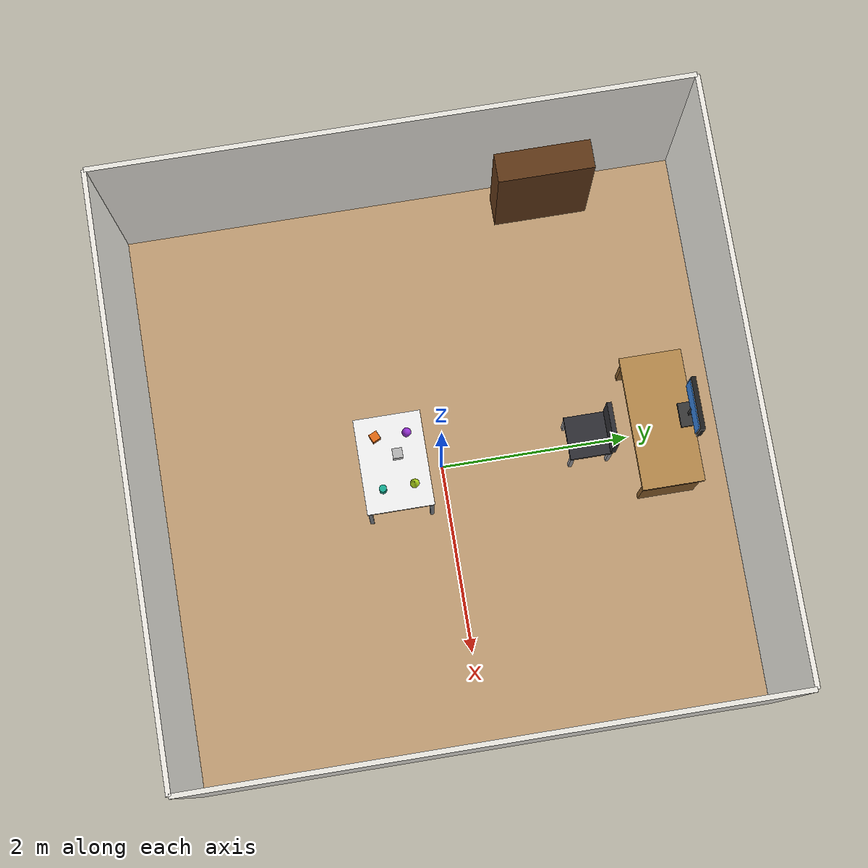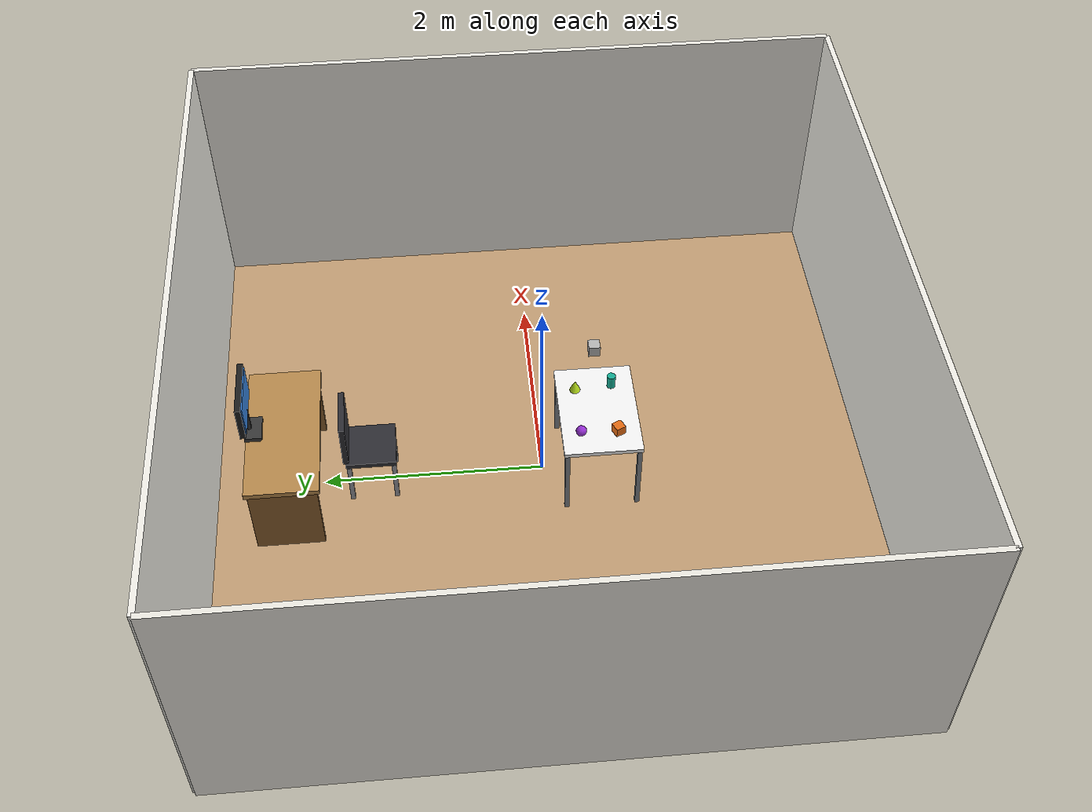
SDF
<?xml version="1.0" ?>
<sdf version="1.10">
  <world name="bps_room">

    <!-- ==================== PHYSICS ==================== -->
    <physics name="1ms" type="ignored">
      <max_step_size>0.001</max_step_size>
      <real_time_factor>1</real_time_factor>
      <real_time_update_rate>1000</real_time_update_rate>
    </physics>

    <gravity>0 0 -9.8</gravity>
    <magnetic_field>5.5645e-06 2.28758e-05 -4.23884e-05</magnetic_field>
    <atmosphere type="adiabatic"/>

    <!-- ==================== SCENE ==================== -->
    <scene>
      <ambient>0.4 0.4 0.4 1</ambient>
      <background>0.7 0.7 0.7 1</background>
      <shadows>true</shadows>
    </scene>

    <!-- ==================== PLUGINS ==================== -->
    <plugin name="gz::sim::systems::Physics"
            filename="gz-sim-physics-system"/>
    <plugin name="gz::sim::systems::UserCommands"
            filename="gz-sim-user-commands-system"/>
    <plugin name="gz::sim::systems::SceneBroadcaster"
            filename="gz-sim-scene-broadcaster-system"/>
    <plugin name="gz::sim::systems::Sensors"
            filename="gz-sim-sensors-system">
      <render_engine>ogre2</render_engine>
    </plugin>
    <plugin name="gz::sim::systems::Contact"
            filename="gz-sim-contact-system"/>
    <plugin
      filename="gz-sim-label-system"
      name="gz::sim::systems::Label"/>

    <!-- ==================== LIGHTING ==================== -->
    <light name="sun" type="directional">
      <pose>0 0 10 0 0 0</pose>
      <cast_shadows>true</cast_shadows>
      <intensity>1</intensity>
      <direction>-0.5 0.1 -0.9</direction>
      <diffuse>0.8 0.8 0.8 1</diffuse>
      <specular>0.2 0.2 0.2 1</specular>
      <attenuation>
        <range>1000</range>
        <linear>0.01</linear>
        <constant>0.9</constant>
        <quadratic>0.001</quadratic>
      </attenuation>
      <spot>
        <inner_angle>0</inner_angle>
        <outer_angle>0</outer_angle>
        <falloff>0</falloff>
      </spot>
    </light>

    <light name="ambient_fill" type="directional">
      <pose>0 0 4 0 0 0</pose>
      <diffuse>0.4 0.4 0.4 1</diffuse>
      <specular>0.0 0.0 0.0 1</specular>
      <direction>0.3 -0.3 -1</direction>
    </light>

    <!-- ==================== ROOM SHELL ==================== -->

    <model name="floor">
      <static>true</static>
      <pose>0 0 0 0 0 0</pose>
      <link name="link">
        <collision name="collision">
          <geometry><box><size>6 6 0.02</size></box></geometry>
        </collision>
        <visual name="visual">
          <geometry><box><size>6 6 0.02</size></box></geometry>
          <material>
            <ambient>0.76 0.62 0.46 1</ambient>
            <diffuse>0.76 0.62 0.46 1</diffuse>
          </material>
        </visual>
      </link>
    </model>

    <model name="wall_north">
      <static>true</static>
      <pose>0 3 1.25 0 0 0</pose>
      <link name="link">
        <collision name="collision">
          <geometry><box><size>6 0.05 2.5</size></box></geometry>
        </collision>
        <visual name="visual">
          <geometry><box><size>6 0.05 2.5</size></box></geometry>
          <material>
            <ambient>0.95 0.94 0.91 1</ambient>
            <diffuse>0.95 0.94 0.91 1</diffuse>
          </material>
        </visual>
      </link>
    </model>

    <model name="wall_south">
      <static>true</static>
      <pose>0 -3 1.25 0 0 0</pose>
      <link name="link">
        <collision name="collision">
          <geometry><box><size>6 0.05 2.5</size></box></geometry>
        </collision>
        <visual name="visual">
          <geometry><box><size>6 0.05 2.5</size></box></geometry>
          <material>
            <ambient>0.95 0.94 0.91 1</ambient>
            <diffuse>0.95 0.94 0.91 1</diffuse>
          </material>
        </visual>
      </link>
    </model>

    <model name="wall_east">
      <static>true</static>
      <pose>3 0 1.25 0 0 0</pose>
      <link name="link">
        <collision name="collision">
          <geometry><box><size>0.05 6 2.5</size></box></geometry>
        </collision>
        <visual name="visual">
          <geometry><box><size>0.05 6 2.5</size></box></geometry>
          <material>
            <ambient>0.93 0.92 0.89 1</ambient>
            <diffuse>0.93 0.92 0.89 1</diffuse>
          </material>
        </visual>
      </link>
    </model>

    <model name="wall_west">
      <static>true</static>
      <pose>-3 0 1.25 0 0 0</pose>
      <link name="link">
        <collision name="collision">
          <geometry><box><size>0.05 6 2.5</size></box></geometry>
        </collision>
        <visual name="visual">
          <geometry><box><size>0.05 6 2.5</size></box></geometry>
          <material>
            <ambient>0.93 0.92 0.89 1</ambient>
            <diffuse>0.93 0.92 0.89 1</diffuse>
          </material>
        </visual>
      </link>
    </model>

    <!-- ==================== BOOKSHELF (west wall) ==================== -->

    <model name="bookshelf_body">
      <static>true</static>
      <pose>-2.7 1.5 0.75 0 0 0</pose>
      <link name="link">
        <collision name="collision">
          <geometry><box><size>0.3 1.0 1.5</size></box></geometry>
        </collision>
        <visual name="visual">
          <geometry><box><size>0.3 1.0 1.5</size></box></geometry>
          <material>
            <ambient>0.38 0.22 0.09 1</ambient>
            <diffuse>0.38 0.22 0.09 1</diffuse>
          </material>
        </visual>
      </link>
    </model>

    <model name="shelf_1">
      <static>true</static>
      <pose>-2.7 1.5 0.4 0 0 0</pose>
      <link name="link">
        <collision name="collision">
          <geometry><box><size>0.28 0.95 0.02</size></box></geometry>
        </collision>
        <visual name="visual">
          <geometry><box><size>0.28 0.95 0.02</size></box></geometry>
          <material>
            <ambient>0.50 0.32 0.14 1</ambient>
            <diffuse>0.50 0.32 0.14 1</diffuse>
          </material>
        </visual>
      </link>
    </model>

    <model name="shelf_2">
      <static>true</static>
      <pose>-2.7 1.5 0.85 0 0 0</pose>
      <link name="link">
        <collision name="collision">
          <geometry><box><size>0.28 0.95 0.02</size></box></geometry>
        </collision>
        <visual name="visual">
          <geometry><box><size>0.28 0.95 0.02</size></box></geometry>
          <material>
            <ambient>0.50 0.32 0.14 1</ambient>
            <diffuse>0.50 0.32 0.14 1</diffuse>
          </material>
        </visual>
      </link>
    </model>

    <model name="shelf_3">
      <static>true</static>
      <pose>-2.7 1.5 1.25 0 0 0</pose>
      <link name="link">
        <collision name="collision">
          <geometry><box><size>0.28 0.95 0.02</size></box></geometry>
        </collision>
        <visual name="visual">
          <geometry><box><size>0.28 0.95 0.02</size></box></geometry>
          <material>
            <ambient>0.50 0.32 0.14 1</ambient>
            <diffuse>0.50 0.32 0.14 1</diffuse>
          </material>
        </visual>
      </link>
    </model>

    <model name="books_row1">
      <static>true</static>
      <pose>-2.62 1.5 0.62 0 0 0</pose>
      <link name="link">
        <visual name="visual">
          <geometry><box><size>0.04 0.8 0.2</size></box></geometry>
          <material>
            <ambient>0.78 0.18 0.18 1</ambient>
            <diffuse>0.78 0.18 0.18 1</diffuse>
          </material>
        </visual>
      </link>
    </model>

    <model name="books_row2">
      <static>true</static>
      <pose>-2.62 1.5 1.06 0 0 0</pose>
      <link name="link">
        <visual name="visual">
          <geometry><box><size>0.04 0.7 0.18</size></box></geometry>
          <material>
            <ambient>0.18 0.32 0.72 1</ambient>
            <diffuse>0.18 0.32 0.72 1</diffuse>
          </material>
        </visual>
      </link>
    </model>

    <!-- ==================== DESK + CHAIR (north wall) ==================== -->

    <model name="desk">
      <static>true</static>
      <pose>0 2.3 0.75 0 0 0</pose>
      <link name="link">
        <collision name="collision">
          <geometry><box><size>1.4 0.65 0.05</size></box></geometry>
        </collision>
        <visual name="visual">
          <geometry><box><size>1.4 0.65 0.05</size></box></geometry>
          <material>
            <ambient>0.72 0.54 0.30 1</ambient>
            <diffuse>0.72 0.54 0.30 1</diffuse>
          </material>
        </visual>
      </link>
    </model>

    <model name="desk_leg_left">
      <static>true</static>
      <pose>-0.65 2.3 0.375 0 0 0</pose>
      <link name="link">
        <collision name="collision">
          <geometry><box><size>0.05 0.6 0.75</size></box></geometry>
        </collision>
        <visual name="visual">
          <geometry><box><size>0.05 0.6 0.75</size></box></geometry>
          <material>
            <ambient>0.55 0.38 0.18 1</ambient>
            <diffuse>0.55 0.38 0.18 1</diffuse>
          </material>
        </visual>
      </link>
    </model>

    <model name="desk_leg_right">
      <static>true</static>
      <pose>0.65 2.3 0.375 0 0 0</pose>
      <link name="link">
        <collision name="collision">
          <geometry><box><size>0.05 0.6 0.75</size></box></geometry>
        </collision>
        <visual name="visual">
          <geometry><box><size>0.05 0.6 0.75</size></box></geometry>
          <material>
            <ambient>0.55 0.38 0.18 1</ambient>
            <diffuse>0.55 0.38 0.18 1</diffuse>
          </material>
        </visual>
      </link>
    </model>

    <model name="monitor_base">
      <static>true</static>
      <pose>0 2.55 0.82 0 0 0</pose>
      <link name="link">
        <collision name="collision">
          <geometry><box><size>0.25 0.15 0.04</size></box></geometry>
        </collision>
        <visual name="visual">
          <geometry><box><size>0.25 0.15 0.04</size></box></geometry>
          <material>
            <ambient>0.22 0.22 0.22 1</ambient>
            <diffuse>0.22 0.22 0.22 1</diffuse>
          </material>
        </visual>
      </link>
    </model>

    <model name="monitor_stand">
      <static>true</static>
      <pose>0 2.58 0.97 0 0 0</pose>
      <link name="link">
        <collision name="collision">
          <geometry><box><size>0.03 0.03 0.26</size></box></geometry>
        </collision>
        <visual name="visual">
          <geometry><box><size>0.03 0.03 0.26</size></box></geometry>
          <material>
            <ambient>0.22 0.22 0.22 1</ambient>
            <diffuse>0.22 0.22 0.22 1</diffuse>
          </material>
        </visual>
      </link>
    </model>

    <model name="monitor_screen">
      <static>true</static>
      <pose>0 2.6 1.2 0 0 0</pose>
      <link name="link">
        <collision name="collision">
          <geometry><box><size>0.55 0.05 0.35</size></box></geometry>
        </collision>
        <visual name="visual">
          <geometry><box><size>0.55 0.05 0.35</size></box></geometry>
          <material>
            <ambient>0.12 0.12 0.12 1</ambient>
            <diffuse>0.12 0.12 0.12 1</diffuse>
          </material>
        </visual>
      </link>
    </model>

    <model name="monitor_face">
      <static>true</static>
      <pose>0 2.57 1.2 0 0 0</pose>
      <link name="link">
        <visual name="visual">
          <geometry><box><size>0.5 0.01 0.3</size></box></geometry>
          <material>
            <ambient>0.22 0.52 0.88 1</ambient>
            <diffuse>0.22 0.52 0.88 1</diffuse>
            <emissive>0.10 0.25 0.45 1</emissive>
          </material>
        </visual>
      </link>
    </model>

    <model name="chair_seat">
      <static>true</static>
      <pose>0 1.55 0.48 0 0 0</pose>
      <link name="link">
        <collision name="collision">
          <geometry><box><size>0.45 0.45 0.05</size></box></geometry>
        </collision>
        <visual name="visual">
          <geometry><box><size>0.45 0.45 0.05</size></box></geometry>
          <material>
            <ambient>0.18 0.18 0.20 1</ambient>
            <diffuse>0.18 0.18 0.20 1</diffuse>
          </material>
        </visual>
      </link>
    </model>

    <model name="chair_back">
      <static>true</static>
      <pose>0 1.77 0.75 0 0 0</pose>
      <link name="link">
        <collision name="collision">
          <geometry><box><size>0.45 0.05 0.45</size></box></geometry>
        </collision>
        <visual name="visual">
          <geometry><box><size>0.45 0.05 0.45</size></box></geometry>
          <material>
            <ambient>0.18 0.18 0.20 1</ambient>
            <diffuse>0.18 0.18 0.20 1</diffuse>
          </material>
        </visual>
      </link>
    </model>

    <model name="chair_leg_fl">
      <static>true</static>
      <pose>-0.2 1.35 0.24 0 0 0</pose>
      <link name="link">
        <collision name="collision">
          <geometry><box><size>0.04 0.04 0.48</size></box></geometry>
        </collision>
        <visual name="visual">
          <geometry><box><size>0.04 0.04 0.48</size></box></geometry>
          <material>
            <ambient>0.60 0.60 0.62 1</ambient>
            <diffuse>0.60 0.60 0.62 1</diffuse>
          </material>
        </visual>
      </link>
    </model>

    <model name="chair_leg_fr">
      <static>true</static>
      <pose>0.2 1.35 0.24 0 0 0</pose>
      <link name="link">
        <collision name="collision">
          <geometry><box><size>0.04 0.04 0.48</size></box></geometry>
        </collision>
        <visual name="visual">
          <geometry><box><size>0.04 0.04 0.48</size></box></geometry>
          <material>
            <ambient>0.60 0.60 0.62 1</ambient>
            <diffuse>0.60 0.60 0.62 1</diffuse>
          </material>
        </visual>
      </link>
    </model>

    <model name="chair_leg_bl">
      <static>true</static>
      <pose>-0.2 1.75 0.24 0 0 0</pose>
      <link name="link">
        <collision name="collision">
          <geometry><box><size>0.04 0.04 0.48</size></box></geometry>
        </collision>
        <visual name="visual">
          <geometry><box><size>0.04 0.04 0.48</size></box></geometry>
          <material>
            <ambient>0.60 0.60 0.62 1</ambient>
            <diffuse>0.60 0.60 0.62 1</diffuse>
          </material>
        </visual>
      </link>
    </model>

    <model name="chair_leg_br">
      <static>true</static>
      <pose>0.2 1.75 0.24 0 0 0</pose>
      <link name="link">
        <collision name="collision">
          <geometry><box><size>0.04 0.04 0.48</size></box></geometry>
        </collision>
        <visual name="visual">
          <geometry><box><size>0.04 0.04 0.48</size></box></geometry>
          <material>
            <ambient>0.60 0.60 0.62 1</ambient>
            <diffuse>0.60 0.60 0.62 1</diffuse>
          </material>
        </visual>
      </link>
    </model>

    <!-- ==================== EXPERIMENT TABLE (permanent, centre) ==================== -->

    <model name="experiment_table">
      <static>true</static>
      <pose>0 -0.5 0.75 0 0 0</pose>
      <link name="link">
        <collision name="collision">
          <geometry><box><size>1.0 0.7 0.04</size></box></geometry>
        </collision>
        <visual name="visual">
          <geometry><box><size>1.0 0.7 0.04</size></box></geometry>
          <material>
            <ambient>0.96 0.96 0.96 1</ambient>
            <diffuse>0.96 0.96 0.96 1</diffuse>
          </material>
        </visual>
      </link>
    </model>

    <model name="table_leg_fl">
      <static>true</static>
      <pose>-0.47 -0.82 0.375 0 0 0</pose>
      <link name="link">
        <collision name="collision">
          <geometry><box><size>0.04 0.04 0.75</size></box></geometry>
        </collision>
        <visual name="visual">
          <geometry><box><size>0.04 0.04 0.75</size></box></geometry>
          <material>
            <ambient>0.50 0.52 0.54 1</ambient>
            <diffuse>0.50 0.52 0.54 1</diffuse>
          </material>
        </visual>
      </link>
    </model>

    <model name="table_leg_fr">
      <static>true</static>
      <pose>0.47 -0.82 0.375 0 0 0</pose>
      <link name="link">
        <collision name="collision">
          <geometry><box><size>0.04 0.04 0.75</size></box></geometry>
        </collision>
        <visual name="visual">
          <geometry><box><size>0.04 0.04 0.75</size></box></geometry>
          <material>
            <ambient>0.50 0.52 0.54 1</ambient>
            <diffuse>0.50 0.52 0.54 1</diffuse>
          </material>
        </visual>
      </link>
    </model>

    <model name="table_leg_bl">
      <static>true</static>
      <pose>-0.47 -0.18 0.375 0 0 0</pose>
      <link name="link">
        <collision name="collision">
          <geometry><box><size>0.04 0.04 0.75</size></box></geometry>
        </collision>
        <visual name="visual">
          <geometry><box><size>0.04 0.04 0.75</size></box></geometry>
          <material>
            <ambient>0.50 0.52 0.54 1</ambient>
            <diffuse>0.50 0.52 0.54 1</diffuse>
          </material>
        </visual>
      </link>
    </model>

    <model name="table_leg_br">
      <static>true</static>
      <pose>0.47 -0.18 0.375 0 0 0</pose>
      <link name="link">
        <collision name="collision">
          <geometry><box><size>0.04 0.04 0.75</size></box></geometry>
        </collision>
        <visual name="visual">
          <geometry><box><size>0.04 0.04 0.75</size></box></geometry>
          <material>
            <ambient>0.50 0.52 0.54 1</ambient>
            <diffuse>0.50 0.52 0.54 1</diffuse>
          </material>
        </visual>
      </link>
    </model>

    <!-- ==================== PRIMITIVE OBJECTS ON EXPERIMENT TABLE ==================== -->

    <!-- CUBE  label=1  orange  yaw=0.42 rad -->
    <model name="obj_cube">
      <static>true</static>
      <pose>-0.28 -0.65 0.815 0 0 0.42</pose>
      <link name="link">
        <collision name="collision">
          <geometry>
            <box><size>0.09 0.09 0.09</size></box>
          </geometry>
        </collision>
        <visual name="visual">
          <geometry>
            <box><size>0.09 0.09 0.09</size></box>
          </geometry>
          <material>
            <ambient>0.90 0.42 0.08 1</ambient>
            <diffuse>0.90 0.42 0.08 1</diffuse>
            <specular>0.3 0.3 0.3 1</specular>
          </material>
          <plugin filename="gz-sim-label-system"
                  name="gz::sim::systems::Label">
            <label>1</label>
          </plugin>
        </visual>
      </link>
    </model>

    <!-- CYLINDER  label=2  teal  upright -->
    <model name="obj_cylinder">
      <static>true</static>
      <pose>0.27 -0.65 0.835 0 0 0</pose>
      <link name="link">
        <collision name="collision">
          <geometry>
            <cylinder>
              <radius>0.038</radius>
              <length>0.13</length>
            </cylinder>
          </geometry>
        </collision>
        <visual name="visual">
          <geometry>
            <cylinder>
              <radius>0.038</radius>
              <length>0.13</length>
            </cylinder>
          </geometry>
          <material>
            <ambient>0.08 0.68 0.58 1</ambient>
            <diffuse>0.08 0.68 0.58 1</diffuse>
            <specular>0.4 0.4 0.4 1</specular>
          </material>
          <plugin filename="gz-sim-label-system"
                  name="gz::sim::systems::Label">
            <label>2</label>
          </plugin>
        </visual>
      </link>
    </model>

    <!-- SPHERE  label=3  violet -->
    <model name="obj_sphere">
      <static>true</static>
      <pose>-0.28 -0.32 0.818 0 0 0</pose>
      <link name="link">
        <collision name="collision">
          <geometry>
            <sphere><radius>0.048</radius></sphere>
          </geometry>
        </collision>
        <visual name="visual">
          <geometry>
            <sphere><radius>0.048</radius></sphere>
          </geometry>
          <material>
            <ambient>0.58 0.18 0.82 1</ambient>
            <diffuse>0.58 0.18 0.82 1</diffuse>
            <specular>0.5 0.5 0.5 1</specular>
          </material>
          <plugin filename="gz-sim-label-system"
                  name="gz::sim::systems::Label">
            <label>3</label>
          </plugin>
        </visual>
      </link>
    </model>

    <!-- CONE  label=4  yellow-green  yaw=1.05 rad -->
    <model name="obj_cone">
      <static>true</static>
      <pose>0.25 -0.32 0.825 0 0 1.05</pose>
      <link name="link">
        <collision name="collision">
          <geometry>
            <cone>
              <radius>0.048</radius>
              <length>0.11</length>
            </cone>
          </geometry>
        </collision>
        <visual name="visual">
          <geometry>
            <cone>
              <radius>0.048</radius>
              <length>0.11</length>
            </cone>
          </geometry>
          <material>
            <ambient>0.72 0.88 0.10 1</ambient>
            <diffuse>0.72 0.88 0.10 1</diffuse>
            <specular>0.3 0.3 0.3 1</specular>
          </material>
          <plugin filename="gz-sim-label-system"
                  name="gz::sim::systems::Label">
            <label>4</label>
          </plugin>
        </visual>
      </link>
    </model>

    <!-- ==================== CAMERA (permanent, top-down above table) ==================== -->
    <model name="depth_camera">
      <static>true</static>
      <self_collide>false</self_collide>
      <pose>0 -0.5 1.57 0 1.5708 0</pose>
      <link name="link">
        <pose>0.05 0.05 0.05 0 0 0</pose>
        <inertial>
          <mass>0.1</mass>
          <inertia>
            <ixx>0.000166667</ixx><iyy>0.000166667</iyy><izz>0.000166667</izz>
            <ixy>0</ixy><ixz>0</ixz><iyz>0</iyz>
          </inertia>
          <pose>0 0 0 0 0 0</pose>
        </inertial>
        <collision name="collision">
          <geometry><box><size>0.1 0.1 0.1</size></box></geometry>
          <surface>
            <friction><ode/></friction>
            <bounce/>
            <contact/>
          </surface>
        </collision>
        <visual name="visual">
          <geometry><box><size>0.1 0.1 0.1</size></box></geometry>
        </visual>

        <!-- Depth sensor — FIX 2: FOV 0.9 -> 1.2 rad -->
        <sensor name="depth_camera1" type="depth_camera">
          <pose>0 0 0 0 0 0</pose>
          <topic>depth_camera</topic>
          <update_rate>10</update_rate>
          <enable_metrics>false</enable_metrics>
          <camera>
            <horizontal_fov>1.2</horizontal_fov>
            <image>
              <width>640</width>
              <height>480</height>
              <format>R_FLOAT32</format>
              <anti_aliasing>4</anti_aliasing>
            </image>
            <camera_info_topic>__default__</camera_info_topic>
            <trigger_topic></trigger_topic>
            <triggered>false</triggered>
            <clip><near>0.1</near><far>2</far></clip>
            <save enabled="false"><path>__default__</path></save>
            <visibility_mask>4294967295</visibility_mask>
            <noise><type>none</type><mean>0</mean><stddev>0</stddev></noise>
            <distortion>
              <k1>0</k1><k2>0</k2><k3>0</k3>
              <p1>0</p1><p2>0</p2>
              <center>0.5 0.5</center>
            </distortion>
            <lens>
              <type>stereographic</type>
              <scale_to_hfov>true</scale_to_hfov>
              <cutoff_angle>1.5707963267948966</cutoff_angle>
              <env_texture_size>256</env_texture_size>
            </lens>
            <optical_frame_id></optical_frame_id>
          </camera>
        </sensor>

        <!-- RGB sensor — FIX 2: FOV 0.9 -> 1.2 rad -->
        <sensor name="rgb_camera" type="camera">
          <pose>0 0 0 0 0 0</pose>
          <topic>rgb_camera</topic>
          <update_rate>10</update_rate>
          <enable_metrics>false</enable_metrics>
          <camera>
            <horizontal_fov>1.2</horizontal_fov>
            <image>
              <width>640</width>
              <height>480</height>
              <format>RGB_INT8</format>
              <anti_aliasing>4</anti_aliasing>
            </image>
            <camera_info_topic>__default__</camera_info_topic>
            <trigger_topic></trigger_topic>
            <triggered>false</triggered>
            <clip><near>0.1</near><far>2</far></clip>
            <save enabled="false"><path>__default__</path></save>
            <visibility_mask>4294967295</visibility_mask>
            <noise><type>none</type><mean>0</mean><stddev>0</stddev></noise>
            <distortion>
              <k1>0</k1><k2>0</k2><k3>0</k3>
              <p1>0</p1><p2>0</p2>
              <center>0.5 0.5</center>
            </distortion>
            <lens>
              <type>stereographic</type>
              <scale_to_hfov>true</scale_to_hfov>
              <cutoff_angle>1.5707963267948966</cutoff_angle>
              <env_texture_size>256</env_texture_size>
            </lens>
            <optical_frame_id></optical_frame_id>
          </camera>
        </sensor>

        <!--
          Semantic segmentation sensor
          FIX 2: FOV 0.9 -> 1.2 rad
          FIX 3: name/topic/type all consistent as "semantic_camera"
        -->
        <sensor name="semantic_camera" type="segmentation">
          <pose>0 0 0 0 0 0</pose>
          <topic>semantic_camera</topic>
          <always_on>true</always_on>
          <update_rate>10</update_rate>
          <camera>
            <segmentation_type>semantic</segmentation_type>
            <horizontal_fov>1.2</horizontal_fov>
            <image>
              <width>640</width>
              <height>480</height>
              <format>RGB_INT8</format>
              <anti_aliasing>4</anti_aliasing>
            </image>
            <clip>
              <near>0.1</near>
              <far>2.0</far>
            </clip>
          </camera>
        </sensor>

        <enable_wind>false</enable_wind>
      </link>
    </model>

  </world>
</sdf>
